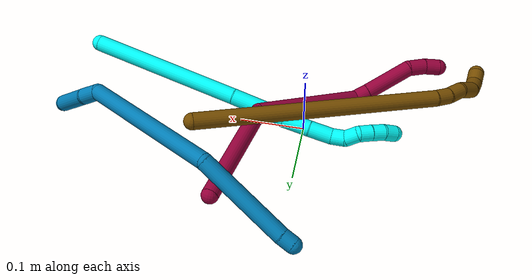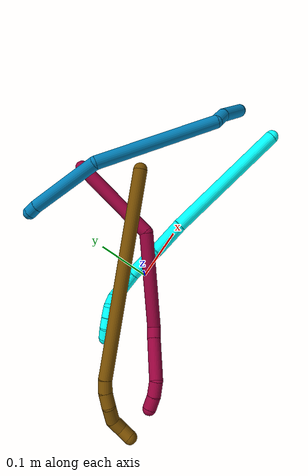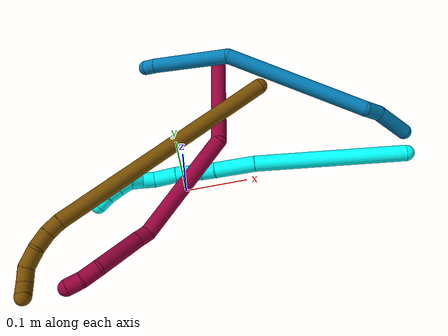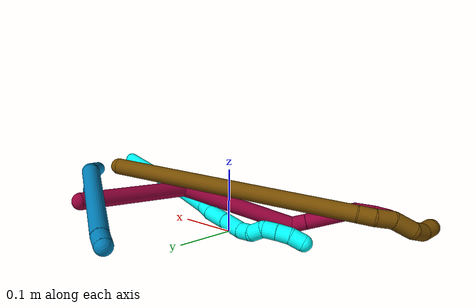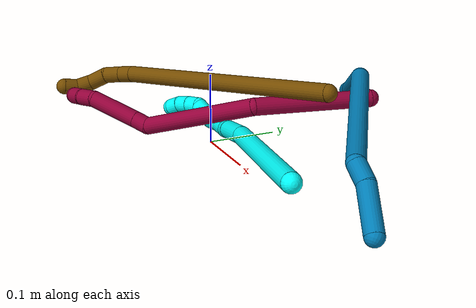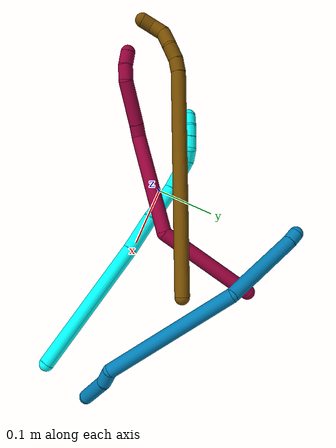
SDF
<sdf version="1.7">
 <world name="default">
  <model name="3">
   <static>0</static>
   <link name="3">
    <collision name="collision-cylinder-e_1_1_4">
     <pose>0 0.010855 -0.11625 -3.04848 1e-06 -2.3e-05</pose>
     <geometry><cylinder><radius>0.0125</radius><length>0.233511</length></cylinder></geometry>
     <surface>
      <friction><ode><mu>1.16</mu><mu2>1.16</mu2><slip1>0</slip1><slip2>0</slip2></ode></friction>
      <contact><ode><kp>1e+06</kp><kd>1</kd><max_vel>0</max_vel><min_depth>0.001</min_depth></ode></contact>
     </surface>
    </collision>
    <visual name="visual-cylinder-e_1_1_4">
     <pose>0 0.010855 -0.11625 -3.04848 1e-06 -2.3e-05</pose>
     <geometry><cylinder><radius>0.0125</radius><length>0.233511</length></cylinder></geometry>
     <material><ambient>0.003922 1 0.996078 1</ambient></material>
    </visual>
    <collision name="collision-cylinder-e_2_4_5">
     <pose>-0.000985 0.021654 -0.264346 3.13983 -0.030936 -3.02752</pose>
     <geometry><cylinder><radius>0.0125</radius><length>0.063725</length></cylinder></geometry>
     <surface>
      <friction><ode><mu>1.16</mu><mu2>1.16</mu2><slip1>0</slip1><slip2>0</slip2></ode></friction>
      <contact><ode><kp>1e+06</kp><kd>1</kd><max_vel>0</max_vel><min_depth>0.001</min_depth></ode></contact>
     </surface>
    </collision>
    <visual name="visual-cylinder-e_2_4_5">
     <pose>-0.000985 0.021654 -0.264346 3.13983 -0.030936 -3.02752</pose>
     <geometry><cylinder><radius>0.0125</radius><length>0.063725</length></cylinder></geometry>
     <material><ambient>0.003922 1 0.996078 1</ambient></material>
    </visual>
    <collision name="collision-cylinder-e_3_5_6">
     <pose>-0.00097 0.020806 -0.307124 3.06933 0.091051 1.8001</pose>
     <geometry><cylinder><radius>0.0125</radius><length>0.02201</length></cylinder></geometry>
     <surface>
      <friction><ode><mu>1.16</mu><mu2>1.16</mu2><slip1>0</slip1><slip2>0</slip2></ode></friction>
      <contact><ode><kp>1e+06</kp><kd>1</kd><max_vel>0</max_vel><min_depth>0.001</min_depth></ode></contact>
     </surface>
    </collision>
    <visual name="visual-cylinder-e_3_5_6">
     <pose>-0.00097 0.020806 -0.307124 3.06933 0.091051 1.8001</pose>
     <geometry><cylinder><radius>0.0125</radius><length>0.02201</length></cylinder></geometry>
     <material><ambient>0.003922 1 0.996078 1</ambient></material>
    </visual>
    <collision name="collision-cylinder-e_4_6_7">
     <pose>-0.000843 0.02189 -0.338803 -3.05145 -0.041914 0.870064</pose>
     <geometry><cylinder><radius>0.0125</radius><length>0.0417</length></cylinder></geometry>
     <surface>
      <friction><ode><mu>1.16</mu><mu2>1.16</mu2><slip1>0</slip1><slip2>0</slip2></ode></friction>
      <contact><ode><kp>1e+06</kp><kd>1</kd><max_vel>0</max_vel><min_depth>0.001</min_depth></ode></contact>
     </surface>
    </collision>
    <visual name="visual-cylinder-e_4_6_7">
     <pose>-0.000843 0.02189 -0.338803 -3.05145 -0.041914 0.870064</pose>
     <geometry><cylinder><radius>0.0125</radius><length>0.0417</length></cylinder></geometry>
     <material><ambient>0.003922 1 0.996078 1</ambient></material>
    </visual>
    <collision name="collision-cylinder-e_5_7_8">
     <pose>-0.003542 0.023376 -0.377396 3.11974 -0.101904 -2.71945</pose>
     <geometry><cylinder><radius>0.0125</radius><length>0.035887</length></cylinder></geometry>
     <surface>
      <friction><ode><mu>1.16</mu><mu2>1.16</mu2><slip1>0</slip1><slip2>0</slip2></ode></friction>
      <contact><ode><kp>1e+06</kp><kd>1</kd><max_vel>0</max_vel><min_depth>0.001</min_depth></ode></contact>
     </surface>
    </collision>
    <visual name="visual-cylinder-e_5_7_8">
     <pose>-0.003542 0.023376 -0.377396 3.11974 -0.101904 -2.71945</pose>
     <geometry><cylinder><radius>0.0125</radius><length>0.035887</length></cylinder></geometry>
     <material><ambient>0.003922 1 0.996078 1</ambient></material>
    </visual>
    <collision name="collision-cylinder-e_6_8_9">
     <pose>-0.007283 0.025445 -0.405566 -2.90771 -0.178588 1.30245</pose>
     <geometry><cylinder><radius>0.0125</radius><length>0.021568</length></cylinder></geometry>
     <surface>
      <friction><ode><mu>1.16</mu><mu2>1.16</mu2><slip1>0</slip1><slip2>0</slip2></ode></friction>
      <contact><ode><kp>1e+06</kp><kd>1</kd><max_vel>0</max_vel><min_depth>0.001</min_depth></ode></contact>
     </surface>
    </collision>
    <visual name="visual-cylinder-e_6_8_9">
     <pose>-0.007283 0.025445 -0.405566 -2.90771 -0.178588 1.30245</pose>
     <geometry><cylinder><radius>0.0125</radius><length>0.021568</length></cylinder></geometry>
     <material><ambient>0.003922 1 0.996078 1</ambient></material>
    </visual>
    <collision name="collision-cylinder-e_7_9_10">
     <pose>-0.014927 0.032769 -0.423585 -2.57796 -0.561545 1.56688</pose>
     <geometry><cylinder><radius>0.0125</radius><length>0.021512</length></cylinder></geometry>
     <surface>
      <friction><ode><mu>1.16</mu><mu2>1.16</mu2><slip1>0</slip1><slip2>0</slip2></ode></friction>
      <contact><ode><kp>1e+06</kp><kd>1</kd><max_vel>0</max_vel><min_depth>0.001</min_depth></ode></contact>
     </surface>
    </collision>
    <visual name="visual-cylinder-e_7_9_10">
     <pose>-0.014927 0.032769 -0.423585 -2.57796 -0.561545 1.56688</pose>
     <geometry><cylinder><radius>0.0125</radius><length>0.021512</length></cylinder></geometry>
     <material><ambient>0.003922 1 0.996078 1</ambient></material>
    </visual>
    <collision name="collision-cylinder-e_8_10_11">
     <pose>-0.026123 0.03657 -0.439587 3.01426 -0.578604 -2.71961</pose>
     <geometry><cylinder><radius>0.0125</radius><length>0.020002</length></cylinder></geometry>
     <surface>
      <friction><ode><mu>1.16</mu><mu2>1.16</mu2><slip1>0</slip1><slip2>0</slip2></ode></friction>
      <contact><ode><kp>1e+06</kp><kd>1</kd><max_vel>0</max_vel><min_depth>0.001</min_depth></ode></contact>
     </surface>
    </collision>
    <visual name="visual-cylinder-e_8_10_11">
     <pose>-0.026123 0.03657 -0.439587 3.01426 -0.578604 -2.71961</pose>
     <geometry><cylinder><radius>0.0125</radius><length>0.020002</length></cylinder></geometry>
     <material><ambient>0.003922 1 0.996078 1</ambient></material>
    </visual>
    <collision name="collision-cylinder-e_9_11_12">
     <pose>-0.036938 0.033678 -0.456161 2.92404 -0.563083 -2.41952</pose>
     <geometry><cylinder><radius>0.0125</radius><length>0.020029</length></cylinder></geometry>
     <surface>
      <friction><ode><mu>1.16</mu><mu2>1.16</mu2><slip1>0</slip1><slip2>0</slip2></ode></friction>
      <contact><ode><kp>1e+06</kp><kd>1</kd><max_vel>0</max_vel><min_depth>0.001</min_depth></ode></contact>
     </surface>
    </collision>
    <visual name="visual-cylinder-e_9_11_12">
     <pose>-0.036938 0.033678 -0.456161 2.92404 -0.563083 -2.41952</pose>
     <geometry><cylinder><radius>0.0125</radius><length>0.020029</length></cylinder></geometry>
     <material><ambient>0.003922 1 0.996078 1</ambient></material>
    </visual>
    <collision name="collision-cylinder-e_10_12_2">
     <pose>-0.04682 0.027713 -0.472359 2.66063 -0.469351 -1.54542</pose>
     <geometry><cylinder><radius>0.0125</radius><length>0.020055</length></cylinder></geometry>
     <surface>
      <friction><ode><mu>1.16</mu><mu2>1.16</mu2><slip1>0</slip1><slip2>0</slip2></ode></friction>
      <contact><ode><kp>1e+06</kp><kd>1</kd><max_vel>0</max_vel><min_depth>0.001</min_depth></ode></contact>
     </surface>
    </collision>
    <visual name="visual-cylinder-e_10_12_2">
     <pose>-0.04682 0.027713 -0.472359 2.66063 -0.469351 -1.54542</pose>
     <geometry><cylinder><radius>0.0125</radius><length>0.020055</length></cylinder></geometry>
     <material><ambient>0.003922 1 0.996078 1</ambient></material>
    </visual>
    <collision name="collision-sphere-2">
     <pose>-0.051355 0.023576 -0.480287 0 -0 0</pose>
     <geometry><sphere><radius>0.0125</radius></sphere></geometry>
     <surface>
      <friction><ode><mu>1.16</mu><mu2>1.16</mu2><slip1>0</slip1><slip2>0</slip2></ode></friction>
      <contact><ode><kp>1e+06</kp><kd>1</kd><max_vel>0</max_vel><min_depth>0.001</min_depth></ode></contact>
     </surface>
    </collision>
    <visual name="visual-sphere-2">
     <pose>-0.051355 0.023576 -0.480287 0 -0 0</pose>
     <geometry><sphere><radius>0.0125</radius></sphere></geometry>
     <material><ambient>0.003922 1 0.996078 1</ambient></material>
    </visual>
    <collision name="collision-sphere-12">
     <pose>-0.042284 0.031851 -0.46443 0 -0 0</pose>
     <geometry><sphere><radius>0.0125</radius></sphere></geometry>
     <surface>
      <friction><ode><mu>1.16</mu><mu2>1.16</mu2><slip1>0</slip1><slip2>0</slip2></ode></friction>
      <contact><ode><kp>1e+06</kp><kd>1</kd><max_vel>0</max_vel><min_depth>0.001</min_depth></ode></contact>
     </surface>
    </collision>
    <visual name="visual-sphere-12">
     <pose>-0.042284 0.031851 -0.46443 0 -0 0</pose>
     <geometry><sphere><radius>0.0125</radius></sphere></geometry>
     <material><ambient>0.003922 1 0.996078 1</ambient></material>
    </visual>
    <collision name="collision-sphere-11">
     <pose>-0.031593 0.035506 -0.447893 0 -0 0</pose>
     <geometry><sphere><radius>0.0125</radius></sphere></geometry>
     <surface>
      <friction><ode><mu>1.16</mu><mu2>1.16</mu2><slip1>0</slip1><slip2>0</slip2></ode></friction>
      <contact><ode><kp>1e+06</kp><kd>1</kd><max_vel>0</max_vel><min_depth>0.001</min_depth></ode></contact>
     </surface>
    </collision>
    <visual name="visual-sphere-11">
     <pose>-0.031593 0.035506 -0.447893 0 -0 0</pose>
     <geometry><sphere><radius>0.0125</radius></sphere></geometry>
     <material><ambient>0.003922 1 0.996078 1</ambient></material>
    </visual>
    <collision name="collision-sphere-10">
     <pose>-0.020654 0.037633 -0.431282 0 -0 0</pose>
     <geometry><sphere><radius>0.0125</radius></sphere></geometry>
     <surface>
      <friction><ode><mu>1.16</mu><mu2>1.16</mu2><slip1>0</slip1><slip2>0</slip2></ode></friction>
      <contact><ode><kp>1e+06</kp><kd>1</kd><max_vel>0</max_vel><min_depth>0.001</min_depth></ode></contact>
     </surface>
    </collision>
    <visual name="visual-sphere-10">
     <pose>-0.020654 0.037633 -0.431282 0 -0 0</pose>
     <geometry><sphere><radius>0.0125</radius></sphere></geometry>
     <material><ambient>0.003922 1 0.996078 1</ambient></material>
    </visual>
    <collision name="collision-sphere-9">
     <pose>-0.009199 0.027905 -0.415889 0 -0 0</pose>
     <geometry><sphere><radius>0.0125</radius></sphere></geometry>
     <surface>
      <friction><ode><mu>1.16</mu><mu2>1.16</mu2><slip1>0</slip1><slip2>0</slip2></ode></friction>
      <contact><ode><kp>1e+06</kp><kd>1</kd><max_vel>0</max_vel><min_depth>0.001</min_depth></ode></contact>
     </surface>
    </collision>
    <visual name="visual-sphere-9">
     <pose>-0.009199 0.027905 -0.415889 0 -0 0</pose>
     <geometry><sphere><radius>0.0125</radius></sphere></geometry>
     <material><ambient>0.003922 1 0.996078 1</ambient></material>
    </visual>
    <collision name="collision-sphere-4">
     <pose>0 0.02171 -0.232499 0 -0 0</pose>
     <geometry><sphere><radius>0.0125</radius></sphere></geometry>
     <surface>
      <friction><ode><mu>1.16</mu><mu2>1.16</mu2><slip1>0</slip1><slip2>0</slip2></ode></friction>
      <contact><ode><kp>1e+06</kp><kd>1</kd><max_vel>0</max_vel><min_depth>0.001</min_depth></ode></contact>
     </surface>
    </collision>
    <visual name="visual-sphere-4">
     <pose>0 0.02171 -0.232499 0 -0 0</pose>
     <geometry><sphere><radius>0.0125</radius></sphere></geometry>
     <material><ambient>0.003922 1 0.996078 1</ambient></material>
    </visual>
    <collision name="collision-sphere-1">
     <geometry><sphere><radius>0.0125</radius></sphere></geometry>
     <surface>
      <friction><ode><mu>1.16</mu><mu2>1.16</mu2><slip1>0</slip1><slip2>0</slip2></ode></friction>
      <contact><ode><kp>1e+06</kp><kd>1</kd><max_vel>0</max_vel><min_depth>0.001</min_depth></ode></contact>
     </surface>
    </collision>
    <visual name="visual-sphere-1">
     <geometry><sphere><radius>0.0125</radius></sphere></geometry>
     <material><ambient>0.003922 1 0.996078 1</ambient></material>
    </visual>
    <collision name="collision-sphere-8">
     <pose>-0.005368 0.022986 -0.395242 0 -0 0</pose>
     <geometry><sphere><radius>0.0125</radius></sphere></geometry>
     <surface>
      <friction><ode><mu>1.16</mu><mu2>1.16</mu2><slip1>0</slip1><slip2>0</slip2></ode></friction>
      <contact><ode><kp>1e+06</kp><kd>1</kd><max_vel>0</max_vel><min_depth>0.001</min_depth></ode></contact>
     </surface>
    </collision>
    <visual name="visual-sphere-8">
     <pose>-0.005368 0.022986 -0.395242 0 -0 0</pose>
     <geometry><sphere><radius>0.0125</radius></sphere></geometry>
     <material><ambient>0.003922 1 0.996078 1</ambient></material>
    </visual>
    <collision name="collision-sphere-5">
     <pose>-0.001971 0.021598 -0.296193 0 -0 0</pose>
     <geometry><sphere><radius>0.0125</radius></sphere></geometry>
     <surface>
      <friction><ode><mu>1.16</mu><mu2>1.16</mu2><slip1>0</slip1><slip2>0</slip2></ode></friction>
      <contact><ode><kp>1e+06</kp><kd>1</kd><max_vel>0</max_vel><min_depth>0.001</min_depth></ode></contact>
     </surface>
    </collision>
    <visual name="visual-sphere-5">
     <pose>-0.001971 0.021598 -0.296193 0 -0 0</pose>
     <geometry><sphere><radius>0.0125</radius></sphere></geometry>
     <material><ambient>0.003922 1 0.996078 1</ambient></material>
    </visual>
    <collision name="collision-sphere-6">
     <pose>3e-05 0.020015 -0.318056 0 -0 0</pose>
     <geometry><sphere><radius>0.0125</radius></sphere></geometry>
     <surface>
      <friction><ode><mu>1.16</mu><mu2>1.16</mu2><slip1>0</slip1><slip2>0</slip2></ode></friction>
      <contact><ode><kp>1e+06</kp><kd>1</kd><max_vel>0</max_vel><min_depth>0.001</min_depth></ode></contact>
     </surface>
    </collision>
    <visual name="visual-sphere-6">
     <pose>3e-05 0.020015 -0.318056 0 -0 0</pose>
     <geometry><sphere><radius>0.0125</radius></sphere></geometry>
     <material><ambient>0.003922 1 0.996078 1</ambient></material>
    </visual>
    <collision name="collision-sphere-7">
     <pose>-0.001717 0.023766 -0.35955 0 -0 0</pose>
     <geometry><sphere><radius>0.0125</radius></sphere></geometry>
     <surface>
      <friction><ode><mu>1.16</mu><mu2>1.16</mu2><slip1>0</slip1><slip2>0</slip2></ode></friction>
      <contact><ode><kp>1e+06</kp><kd>1</kd><max_vel>0</max_vel><min_depth>0.001</min_depth></ode></contact>
     </surface>
    </collision>
    <visual name="visual-sphere-7">
     <pose>-0.001717 0.023766 -0.35955 0 -0 0</pose>
     <geometry><sphere><radius>0.0125</radius></sphere></geometry>
     <material><ambient>0.003922 1 0.996078 1</ambient></material>
    </visual>
    <inertial>
     <pose>-0.005852 0.01868 -0.247369 0 -0 0</pose>
     <mass>0.5</mass>
     <inertia>
      <ixx>0.001044</ixx>
      <ixy>0</ixy>
      <ixz>0</ixz>
      <iyy>-0.001034</iyy>
      <iyz>0</iyz>
      <izz>-0.000133</izz>
     </inertia>
    </inertial>
   </link>
   <pose>0.338331 -0.051588 0.074238 1.35364 0.297037 1.32396</pose>
  </model>
  <model name="8">
   <static>0</static>
   <link name="8">
    <collision name="collision-cylinder-e_1_1_4">
     <pose>-0.027754 -0.067378 0.043032 1.00243 -0.334132 -0.184264</pose>
     <geometry><cylinder><radius>0.0125</radius><length>0.169255</length></cylinder></geometry>
     <surface>
      <friction><ode><mu>1.16</mu><mu2>1.16</mu2><slip1>0</slip1><slip2>0</slip2></ode></friction>
      <contact><ode><kp>1e+06</kp><kd>1</kd><max_vel>0</max_vel><min_depth>0.001</min_depth></ode></contact>
     </surface>
    </collision>
    <visual name="visual-cylinder-e_1_1_4">
     <pose>-0.027754 -0.067378 0.043032 1.00243 -0.334132 -0.184264</pose>
     <geometry><cylinder><radius>0.0125</radius><length>0.169255</length></cylinder></geometry>
     <material><ambient>0.584314 0 0.227451 1</ambient></material>
    </visual>
    <collision name="collision-cylinder-e_2_4_5">
     <pose>-0.133616 -0.178302 0.098051 1.30218 -1.04654 -0.828279</pose>
     <geometry><cylinder><radius>0.0125</radius><length>0.180453</length></cylinder></geometry>
     <surface>
      <friction><ode><mu>1.16</mu><mu2>1.16</mu2><slip1>0</slip1><slip2>0</slip2></ode></friction>
      <contact><ode><kp>1e+06</kp><kd>1</kd><max_vel>0</max_vel><min_depth>0.001</min_depth></ode></contact>
     </surface>
    </collision>
    <visual name="visual-cylinder-e_2_4_5">
     <pose>-0.133616 -0.178302 0.098051 1.30218 -1.04654 -0.828279</pose>
     <geometry><cylinder><radius>0.0125</radius><length>0.180453</length></cylinder></geometry>
     <material><ambient>0.584314 0 0.227451 1</ambient></material>
    </visual>
    <collision name="collision-cylinder-e_3_5_6">
     <pose>-0.220598 -0.223617 0.116888 0.252847 -0.897664 -0.122275</pose>
     <geometry><cylinder><radius>0.0125</radius><length>0.022698</length></cylinder></geometry>
     <surface>
      <friction><ode><mu>1.16</mu><mu2>1.16</mu2><slip1>0</slip1><slip2>0</slip2></ode></friction>
      <contact><ode><kp>1e+06</kp><kd>1</kd><max_vel>0</max_vel><min_depth>0.001</min_depth></ode></contact>
     </surface>
    </collision>
    <visual name="visual-cylinder-e_3_5_6">
     <pose>-0.220598 -0.223617 0.116888 0.252847 -0.897664 -0.122275</pose>
     <geometry><cylinder><radius>0.0125</radius><length>0.022698</length></cylinder></geometry>
     <material><ambient>0.584314 0 0.227451 1</ambient></material>
    </visual>
    <collision name="collision-cylinder-e_4_6_7">
     <pose>-0.258549 -0.232869 0.147501 0.305065 -0.862381 -0.141212</pose>
     <geometry><cylinder><radius>0.0125</radius><length>0.076581</length></cylinder></geometry>
     <surface>
      <friction><ode><mu>1.16</mu><mu2>1.16</mu2><slip1>0</slip1><slip2>0</slip2></ode></friction>
      <contact><ode><kp>1e+06</kp><kd>1</kd><max_vel>0</max_vel><min_depth>0.001</min_depth></ode></contact>
     </surface>
    </collision>
    <visual name="visual-cylinder-e_4_6_7">
     <pose>-0.258549 -0.232869 0.147501 0.305065 -0.862381 -0.141212</pose>
     <geometry><cylinder><radius>0.0125</radius><length>0.076581</length></cylinder></geometry>
     <material><ambient>0.584314 0 0.227451 1</ambient></material>
    </visual>
    <collision name="collision-cylinder-e_5_7_8">
     <pose>-0.300614 -0.243123 0.174856 0.657053 -1.23469 -0.474857</pose>
     <geometry><cylinder><radius>0.0125</radius><length>0.027516</length></cylinder></geometry>
     <surface>
      <friction><ode><mu>1.16</mu><mu2>1.16</mu2><slip1>0</slip1><slip2>0</slip2></ode></friction>
      <contact><ode><kp>1e+06</kp><kd>1</kd><max_vel>0</max_vel><min_depth>0.001</min_depth></ode></contact>
     </surface>
    </collision>
    <visual name="visual-cylinder-e_5_7_8">
     <pose>-0.300614 -0.243123 0.174856 0.657053 -1.23469 -0.474857</pose>
     <geometry><cylinder><radius>0.0125</radius><length>0.027516</length></cylinder></geometry>
     <material><ambient>0.584314 0 0.227451 1</ambient></material>
    </visual>
    <collision name="collision-cylinder-e_6_8_2">
     <pose>-0.325245 -0.246467 0.179915 0.3719 -1.43647 -0.325903</pose>
     <geometry><cylinder><radius>0.0125</radius><length>0.023497</length></cylinder></geometry>
     <surface>
      <friction><ode><mu>1.16</mu><mu2>1.16</mu2><slip1>0</slip1><slip2>0</slip2></ode></friction>
      <contact><ode><kp>1e+06</kp><kd>1</kd><max_vel>0</max_vel><min_depth>0.001</min_depth></ode></contact>
     </surface>
    </collision>
    <visual name="visual-cylinder-e_6_8_2">
     <pose>-0.325245 -0.246467 0.179915 0.3719 -1.43647 -0.325903</pose>
     <geometry><cylinder><radius>0.0125</radius><length>0.023497</length></cylinder></geometry>
     <material><ambient>0.584314 0 0.227451 1</ambient></material>
    </visual>
    <collision name="collision-sphere-2">
     <pose>-0.336888 -0.247038 0.181381 0 -0 0</pose>
     <geometry><sphere><radius>0.0125</radius></sphere></geometry>
     <surface>
      <friction><ode><mu>1.16</mu><mu2>1.16</mu2><slip1>0</slip1><slip2>0</slip2></ode></friction>
      <contact><ode><kp>1e+06</kp><kd>1</kd><max_vel>0</max_vel><min_depth>0.001</min_depth></ode></contact>
     </surface>
    </collision>
    <visual name="visual-sphere-2">
     <pose>-0.336888 -0.247038 0.181381 0 -0 0</pose>
     <geometry><sphere><radius>0.0125</radius></sphere></geometry>
     <material><ambient>0.584314 0 0.227451 1</ambient></material>
    </visual>
    <collision name="collision-sphere-4">
     <pose>-0.055507 -0.134757 0.086064 0 -0 0</pose>
     <geometry><sphere><radius>0.0125</radius></sphere></geometry>
     <surface>
      <friction><ode><mu>1.16</mu><mu2>1.16</mu2><slip1>0</slip1><slip2>0</slip2></ode></friction>
      <contact><ode><kp>1e+06</kp><kd>1</kd><max_vel>0</max_vel><min_depth>0.001</min_depth></ode></contact>
     </surface>
    </collision>
    <visual name="visual-sphere-4">
     <pose>-0.055507 -0.134757 0.086064 0 -0 0</pose>
     <geometry><sphere><radius>0.0125</radius></sphere></geometry>
     <material><ambient>0.584314 0 0.227451 1</ambient></material>
    </visual>
    <collision name="collision-sphere-1">
     <geometry><sphere><radius>0.0125</radius></sphere></geometry>
     <surface>
      <friction><ode><mu>1.16</mu><mu2>1.16</mu2><slip1>0</slip1><slip2>0</slip2></ode></friction>
      <contact><ode><kp>1e+06</kp><kd>1</kd><max_vel>0</max_vel><min_depth>0.001</min_depth></ode></contact>
     </surface>
    </collision>
    <visual name="visual-sphere-1">
     <geometry><sphere><radius>0.0125</radius></sphere></geometry>
     <material><ambient>0.584314 0 0.227451 1</ambient></material>
    </visual>
    <collision name="collision-sphere-8">
     <pose>-0.313603 -0.245895 0.178449 0 -0 0</pose>
     <geometry><sphere><radius>0.0125</radius></sphere></geometry>
     <surface>
      <friction><ode><mu>1.16</mu><mu2>1.16</mu2><slip1>0</slip1><slip2>0</slip2></ode></friction>
      <contact><ode><kp>1e+06</kp><kd>1</kd><max_vel>0</max_vel><min_depth>0.001</min_depth></ode></contact>
     </surface>
    </collision>
    <visual name="visual-sphere-8">
     <pose>-0.313603 -0.245895 0.178449 0 -0 0</pose>
     <geometry><sphere><radius>0.0125</radius></sphere></geometry>
     <material><ambient>0.584314 0 0.227451 1</ambient></material>
    </visual>
    <collision name="collision-sphere-5">
     <pose>-0.211725 -0.221847 0.110037 0 -0 0</pose>
     <geometry><sphere><radius>0.0125</radius></sphere></geometry>
     <surface>
      <friction><ode><mu>1.16</mu><mu2>1.16</mu2><slip1>0</slip1><slip2>0</slip2></ode></friction>
      <contact><ode><kp>1e+06</kp><kd>1</kd><max_vel>0</max_vel><min_depth>0.001</min_depth></ode></contact>
     </surface>
    </collision>
    <visual name="visual-sphere-5">
     <pose>-0.211725 -0.221847 0.110037 0 -0 0</pose>
     <geometry><sphere><radius>0.0125</radius></sphere></geometry>
     <material><ambient>0.584314 0 0.227451 1</ambient></material>
    </visual>
    <collision name="collision-sphere-6">
     <pose>-0.229471 -0.225386 0.123738 0 -0 0</pose>
     <geometry><sphere><radius>0.0125</radius></sphere></geometry>
     <surface>
      <friction><ode><mu>1.16</mu><mu2>1.16</mu2><slip1>0</slip1><slip2>0</slip2></ode></friction>
      <contact><ode><kp>1e+06</kp><kd>1</kd><max_vel>0</max_vel><min_depth>0.001</min_depth></ode></contact>
     </surface>
    </collision>
    <visual name="visual-sphere-6">
     <pose>-0.229471 -0.225386 0.123738 0 -0 0</pose>
     <geometry><sphere><radius>0.0125</radius></sphere></geometry>
     <material><ambient>0.584314 0 0.227451 1</ambient></material>
    </visual>
    <collision name="collision-sphere-7">
     <pose>-0.287626 -0.240352 0.171263 0 -0 0</pose>
     <geometry><sphere><radius>0.0125</radius></sphere></geometry>
     <surface>
      <friction><ode><mu>1.16</mu><mu2>1.16</mu2><slip1>0</slip1><slip2>0</slip2></ode></friction>
      <contact><ode><kp>1e+06</kp><kd>1</kd><max_vel>0</max_vel><min_depth>0.001</min_depth></ode></contact>
     </surface>
    </collision>
    <visual name="visual-sphere-7">
     <pose>-0.287626 -0.240352 0.171263 0 -0 0</pose>
     <geometry><sphere><radius>0.0125</radius></sphere></geometry>
     <material><ambient>0.584314 0 0.227451 1</ambient></material>
    </visual>
    <inertial>
     <pose>-0.13906 -0.157938 0.095929 0 -0 0</pose>
     <mass>0.5</mass>
     <inertia>
      <ixx>0.000293</ixx>
      <ixy>0</ixy>
      <ixz>0</ixz>
      <iyy>0.000401</iyy>
      <iyz>0</iyz>
      <izz>0.001191</izz>
     </inertia>
    </inertial>
   </link>
   <pose>0.095519 0.204732 0.06664 0.489527 -0.227684 0.146604</pose>
  </model>
  <model name="9">
   <static>0</static>
   <link name="9">
    <collision name="collision-cylinder-e_1_1_4">
     <pose>-0.014734 0.006146 0.02837 -0.213331 -0.469699 0.051226</pose>
     <geometry><cylinder><radius>0.0125</radius><length>0.065107</length></cylinder></geometry>
     <surface>
      <friction><ode><mu>1.16</mu><mu2>1.16</mu2><slip1>0</slip1><slip2>0</slip2></ode></friction>
      <contact><ode><kp>1e+06</kp><kd>1</kd><max_vel>0</max_vel><min_depth>0.001</min_depth></ode></contact>
     </surface>
    </collision>
    <visual name="visual-cylinder-e_1_1_4">
     <pose>-0.014734 0.006146 0.02837 -0.213331 -0.469699 0.051226</pose>
     <geometry><cylinder><radius>0.0125</radius><length>0.065107</length></cylinder></geometry>
     <material><ambient>0 0.490196 0.709804 1</ambient></material>
    </visual>
    <collision name="collision-cylinder-e_2_4_5">
     <pose>-0.039391 0.01589 0.067347 -0.327098 -0.724935 0.124998</pose>
     <geometry><cylinder><radius>0.0125</radius><length>0.029927</length></cylinder></geometry>
     <surface>
      <friction><ode><mu>1.16</mu><mu2>1.16</mu2><slip1>0</slip1><slip2>0</slip2></ode></friction>
      <contact><ode><kp>1e+06</kp><kd>1</kd><max_vel>0</max_vel><min_depth>0.001</min_depth></ode></contact>
     </surface>
    </collision>
    <visual name="visual-cylinder-e_2_4_5">
     <pose>-0.039391 0.01589 0.067347 -0.327098 -0.724935 0.124998</pose>
     <geometry><cylinder><radius>0.0125</radius><length>0.029927</length></cylinder></geometry>
     <material><ambient>0 0.490196 0.709804 1</ambient></material>
    </visual>
    <collision name="collision-cylinder-e_3_5_6">
     <pose>-0.07596 0.102171 0.161676 -0.779151 -0.222708 0.09175</pose>
     <geometry><cylinder><radius>0.0125</radius><length>0.241295</length></cylinder></geometry>
     <surface>
      <friction><ode><mu>1.16</mu><mu2>1.16</mu2><slip1>0</slip1><slip2>0</slip2></ode></friction>
      <contact><ode><kp>1e+06</kp><kd>1</kd><max_vel>0</max_vel><min_depth>0.001</min_depth></ode></contact>
     </surface>
    </collision>
    <visual name="visual-cylinder-e_3_5_6">
     <pose>-0.07596 0.102171 0.161676 -0.779151 -0.222708 0.09175</pose>
     <geometry><cylinder><radius>0.0125</radius><length>0.241295</length></cylinder></geometry>
     <material><ambient>0 0.490196 0.709804 1</ambient></material>
    </visual>
    <collision name="collision-cylinder-e_4_6_7">
     <pose>-0.11531 0.253911 0.260369 -1.35731 -0.177856 0.143563</pose>
     <geometry><cylinder><radius>0.0125</radius><length>0.143588</length></cylinder></geometry>
     <surface>
      <friction><ode><mu>1.16</mu><mu2>1.16</mu2><slip1>0</slip1><slip2>0</slip2></ode></friction>
      <contact><ode><kp>1e+06</kp><kd>1</kd><max_vel>0</max_vel><min_depth>0.001</min_depth></ode></contact>
     </surface>
    </collision>
    <visual name="visual-cylinder-e_4_6_7">
     <pose>-0.11531 0.253911 0.260369 -1.35731 -0.177856 0.143563</pose>
     <geometry><cylinder><radius>0.0125</radius><length>0.143588</length></cylinder></geometry>
     <material><ambient>0 0.490196 0.709804 1</ambient></material>
    </visual>
    <collision name="collision-cylinder-e_5_7_2">
     <pose>-0.130893 0.332431 0.277068 -1.39012 -0.291057 0.243227</pose>
     <geometry><cylinder><radius>0.0125</radius><length>0.020083</length></cylinder></geometry>
     <surface>
      <friction><ode><mu>1.16</mu><mu2>1.16</mu2><slip1>0</slip1><slip2>0</slip2></ode></friction>
      <contact><ode><kp>1e+06</kp><kd>1</kd><max_vel>0</max_vel><min_depth>0.001</min_depth></ode></contact>
     </surface>
    </collision>
    <visual name="visual-cylinder-e_5_7_2">
     <pose>-0.130893 0.332431 0.277068 -1.39012 -0.291057 0.243227</pose>
     <geometry><cylinder><radius>0.0125</radius><length>0.020083</length></cylinder></geometry>
     <material><ambient>0 0.490196 0.709804 1</ambient></material>
    </visual>
    <collision name="collision-sphere-2">
     <pose>-0.133775 0.341893 0.278797 0 -0 0</pose>
     <geometry><sphere><radius>0.0125</radius></sphere></geometry>
     <surface>
      <friction><ode><mu>1.16</mu><mu2>1.16</mu2><slip1>0</slip1><slip2>0</slip2></ode></friction>
      <contact><ode><kp>1e+06</kp><kd>1</kd><max_vel>0</max_vel><min_depth>0.001</min_depth></ode></contact>
     </surface>
    </collision>
    <visual name="visual-sphere-2">
     <pose>-0.133775 0.341893 0.278797 0 -0 0</pose>
     <geometry><sphere><radius>0.0125</radius></sphere></geometry>
     <material><ambient>0 0.490196 0.709804 1</ambient></material>
    </visual>
    <collision name="collision-sphere-7">
     <pose>-0.128012 0.322969 0.27534 0 -0 0</pose>
     <geometry><sphere><radius>0.0125</radius></sphere></geometry>
     <surface>
      <friction><ode><mu>1.16</mu><mu2>1.16</mu2><slip1>0</slip1><slip2>0</slip2></ode></friction>
      <contact><ode><kp>1e+06</kp><kd>1</kd><max_vel>0</max_vel><min_depth>0.001</min_depth></ode></contact>
     </surface>
    </collision>
    <visual name="visual-sphere-7">
     <pose>-0.128012 0.322969 0.27534 0 -0 0</pose>
     <geometry><sphere><radius>0.0125</radius></sphere></geometry>
     <material><ambient>0 0.490196 0.709804 1</ambient></material>
    </visual>
    <collision name="collision-sphere-6">
     <pose>-0.102608 0.184854 0.245398 0 -0 0</pose>
     <geometry><sphere><radius>0.0125</radius></sphere></geometry>
     <surface>
      <friction><ode><mu>1.16</mu><mu2>1.16</mu2><slip1>0</slip1><slip2>0</slip2></ode></friction>
      <contact><ode><kp>1e+06</kp><kd>1</kd><max_vel>0</max_vel><min_depth>0.001</min_depth></ode></contact>
     </surface>
    </collision>
    <visual name="visual-sphere-6">
     <pose>-0.102608 0.184854 0.245398 0 -0 0</pose>
     <geometry><sphere><radius>0.0125</radius></sphere></geometry>
     <material><ambient>0 0.490196 0.709804 1</ambient></material>
    </visual>
    <collision name="collision-sphere-5">
     <pose>-0.049313 0.019489 0.077954 0 -0 0</pose>
     <geometry><sphere><radius>0.0125</radius></sphere></geometry>
     <surface>
      <friction><ode><mu>1.16</mu><mu2>1.16</mu2><slip1>0</slip1><slip2>0</slip2></ode></friction>
      <contact><ode><kp>1e+06</kp><kd>1</kd><max_vel>0</max_vel><min_depth>0.001</min_depth></ode></contact>
     </surface>
    </collision>
    <visual name="visual-sphere-5">
     <pose>-0.049313 0.019489 0.077954 0 -0 0</pose>
     <geometry><sphere><radius>0.0125</radius></sphere></geometry>
     <material><ambient>0 0.490196 0.709804 1</ambient></material>
    </visual>
    <collision name="collision-sphere-1">
     <geometry><sphere><radius>0.0125</radius></sphere></geometry>
     <surface>
      <friction><ode><mu>1.16</mu><mu2>1.16</mu2><slip1>0</slip1><slip2>0</slip2></ode></friction>
      <contact><ode><kp>1e+06</kp><kd>1</kd><max_vel>0</max_vel><min_depth>0.001</min_depth></ode></contact>
     </surface>
    </collision>
    <visual name="visual-sphere-1">
     <geometry><sphere><radius>0.0125</radius></sphere></geometry>
     <material><ambient>0 0.490196 0.709804 1</ambient></material>
    </visual>
    <collision name="collision-sphere-4">
     <pose>-0.029469 0.012291 0.05674 0 -0 0</pose>
     <geometry><sphere><radius>0.0125</radius></sphere></geometry>
     <surface>
      <friction><ode><mu>1.16</mu><mu2>1.16</mu2><slip1>0</slip1><slip2>0</slip2></ode></friction>
      <contact><ode><kp>1e+06</kp><kd>1</kd><max_vel>0</max_vel><min_depth>0.001</min_depth></ode></contact>
     </surface>
    </collision>
    <visual name="visual-sphere-4">
     <pose>-0.029469 0.012291 0.05674 0 -0 0</pose>
     <geometry><sphere><radius>0.0125</radius></sphere></geometry>
     <material><ambient>0 0.490196 0.709804 1</ambient></material>
    </visual>
    <inertial>
     <pose>-0.079306 0.137328 0.171649 0 -0 0</pose>
     <mass>0.5</mass>
     <inertia>
      <ixx>0.001551</ixx>
      <ixy>0</ixy>
      <ixz>0</ixz>
      <iyy>0.00111</iyy>
      <iyz>0</iyz>
      <izz>-0.000717</izz>
     </inertia>
    </inertial>
   </link>
   <pose>0.380517 0.03074 0.011984 -0.69172 0.230156 0.800176</pose>
  </model>
  <model name="12">
   <static>0</static>
   <link name="12">
    <collision name="collision-cylinder-e_1_1_4">
     <pose>-0.064347 0.010714 0.175646 -0.060924 -0.350563 0.010793</pose>
     <geometry><cylinder><radius>0.0125</radius><length>0.374736</length></cylinder></geometry>
     <surface>
      <friction><ode><mu>1.16</mu><mu2>1.16</mu2><slip1>0</slip1><slip2>0</slip2></ode></friction>
      <contact><ode><kp>1e+06</kp><kd>1</kd><max_vel>0</max_vel><min_depth>0.001</min_depth></ode></contact>
     </surface>
    </collision>
    <visual name="visual-cylinder-e_1_1_4">
     <pose>-0.064347 0.010714 0.175646 -0.060924 -0.350563 0.010793</pose>
     <geometry><cylinder><radius>0.0125</radius><length>0.374736</length></cylinder></geometry>
     <material><ambient>0.466667 0.301961 0 1</ambient></material>
    </visual>
    <collision name="collision-cylinder-e_2_4_5">
     <pose>-0.133525 0.023817 0.361695 -0.225635 -0.424952 0.048875</pose>
     <geometry><cylinder><radius>0.0125</radius><length>0.023434</length></cylinder></geometry>
     <surface>
      <friction><ode><mu>1.16</mu><mu2>1.16</mu2><slip1>0</slip1><slip2>0</slip2></ode></friction>
      <contact><ode><kp>1e+06</kp><kd>1</kd><max_vel>0</max_vel><min_depth>0.001</min_depth></ode></contact>
     </surface>
    </collision>
    <visual name="visual-cylinder-e_2_4_5">
     <pose>-0.133525 0.023817 0.361695 -0.225635 -0.424952 0.048875</pose>
     <geometry><cylinder><radius>0.0125</radius><length>0.023434</length></cylinder></geometry>
     <material><ambient>0.466667 0.301961 0 1</ambient></material>
    </visual>
    <collision name="collision-cylinder-e_3_5_6">
     <pose>-0.1455 0.030794 0.382088 -0.430712 -0.576338 0.129502</pose>
     <geometry><cylinder><radius>0.0125</radius><length>0.02622</length></cylinder></geometry>
     <surface>
      <friction><ode><mu>1.16</mu><mu2>1.16</mu2><slip1>0</slip1><slip2>0</slip2></ode></friction>
      <contact><ode><kp>1e+06</kp><kd>1</kd><max_vel>0</max_vel><min_depth>0.001</min_depth></ode></contact>
     </surface>
    </collision>
    <visual name="visual-cylinder-e_3_5_6">
     <pose>-0.1455 0.030794 0.382088 -0.430712 -0.576338 0.129502</pose>
     <geometry><cylinder><radius>0.0125</radius><length>0.02622</length></cylinder></geometry>
     <material><ambient>0.466667 0.301961 0 1</ambient></material>
    </visual>
    <collision name="collision-cylinder-e_4_6_7">
     <pose>-0.156641 0.043894 0.404501 -0.60057 -0.259447 0.080747</pose>
     <geometry><cylinder><radius>0.0125</radius><length>0.031163</length></cylinder></geometry>
     <surface>
      <friction><ode><mu>1.16</mu><mu2>1.16</mu2><slip1>0</slip1><slip2>0</slip2></ode></friction>
      <contact><ode><kp>1e+06</kp><kd>1</kd><max_vel>0</max_vel><min_depth>0.001</min_depth></ode></contact>
     </surface>
    </collision>
    <visual name="visual-cylinder-e_4_6_7">
     <pose>-0.156641 0.043894 0.404501 -0.60057 -0.259447 0.080747</pose>
     <geometry><cylinder><radius>0.0125</radius><length>0.031163</length></cylinder></geometry>
     <material><ambient>0.466667 0.301961 0 1</ambient></material>
    </visual>
    <collision name="collision-cylinder-e_5_7_8">
     <pose>-0.167442 0.060843 0.421441 -1.07938 -0.617997 0.377875</pose>
     <geometry><cylinder><radius>0.0125</radius><length>0.023484</length></cylinder></geometry>
     <surface>
      <friction><ode><mu>1.16</mu><mu2>1.16</mu2><slip1>0</slip1><slip2>0</slip2></ode></friction>
      <contact><ode><kp>1e+06</kp><kd>1</kd><max_vel>0</max_vel><min_depth>0.001</min_depth></ode></contact>
     </surface>
    </collision>
    <visual name="visual-cylinder-e_5_7_8">
     <pose>-0.167442 0.060843 0.421441 -1.07938 -0.617997 0.377875</pose>
     <geometry><cylinder><radius>0.0125</radius><length>0.023484</length></cylinder></geometry>
     <material><ambient>0.466667 0.301961 0 1</ambient></material>
    </visual>
    <collision name="collision-cylinder-e_6_8_2">
     <pose>-0.183227 0.074326 0.427889 -1.20513 -1.02923 0.741915</pose>
     <geometry><cylinder><radius>0.0125</radius><length>0.020964</length></cylinder></geometry>
     <surface>
      <friction><ode><mu>1.16</mu><mu2>1.16</mu2><slip1>0</slip1><slip2>0</slip2></ode></friction>
      <contact><ode><kp>1e+06</kp><kd>1</kd><max_vel>0</max_vel><min_depth>0.001</min_depth></ode></contact>
     </surface>
    </collision>
    <visual name="visual-cylinder-e_6_8_2">
     <pose>-0.183227 0.074326 0.427889 -1.20513 -1.02923 0.741915</pose>
     <geometry><cylinder><radius>0.0125</radius><length>0.020964</length></cylinder></geometry>
     <material><ambient>0.466667 0.301961 0 1</ambient></material>
    </visual>
    <collision name="collision-sphere-2">
     <pose>-0.192209 0.079372 0.429821 0 -0 0</pose>
     <geometry><sphere><radius>0.0125</radius></sphere></geometry>
     <surface>
      <friction><ode><mu>1.16</mu><mu2>1.16</mu2><slip1>0</slip1><slip2>0</slip2></ode></friction>
      <contact><ode><kp>1e+06</kp><kd>1</kd><max_vel>0</max_vel><min_depth>0.001</min_depth></ode></contact>
     </surface>
    </collision>
    <visual name="visual-sphere-2">
     <pose>-0.192209 0.079372 0.429821 0 -0 0</pose>
     <geometry><sphere><radius>0.0125</radius></sphere></geometry>
     <material><ambient>0.466667 0.301961 0 1</ambient></material>
    </visual>
    <collision name="collision-sphere-4">
     <pose>-0.128694 0.021428 0.351291 0 -0 0</pose>
     <geometry><sphere><radius>0.0125</radius></sphere></geometry>
     <surface>
      <friction><ode><mu>1.16</mu><mu2>1.16</mu2><slip1>0</slip1><slip2>0</slip2></ode></friction>
      <contact><ode><kp>1e+06</kp><kd>1</kd><max_vel>0</max_vel><min_depth>0.001</min_depth></ode></contact>
     </surface>
    </collision>
    <visual name="visual-sphere-4">
     <pose>-0.128694 0.021428 0.351291 0 -0 0</pose>
     <geometry><sphere><radius>0.0125</radius></sphere></geometry>
     <material><ambient>0.466667 0.301961 0 1</ambient></material>
    </visual>
    <collision name="collision-sphere-1">
     <geometry><sphere><radius>0.0125</radius></sphere></geometry>
     <surface>
      <friction><ode><mu>1.16</mu><mu2>1.16</mu2><slip1>0</slip1><slip2>0</slip2></ode></friction>
      <contact><ode><kp>1e+06</kp><kd>1</kd><max_vel>0</max_vel><min_depth>0.001</min_depth></ode></contact>
     </surface>
    </collision>
    <visual name="visual-sphere-1">
     <geometry><sphere><radius>0.0125</radius></sphere></geometry>
     <material><ambient>0.466667 0.301961 0 1</ambient></material>
    </visual>
    <collision name="collision-sphere-8">
     <pose>-0.174246 0.06928 0.425957 0 -0 0</pose>
     <geometry><sphere><radius>0.0125</radius></sphere></geometry>
     <surface>
      <friction><ode><mu>1.16</mu><mu2>1.16</mu2><slip1>0</slip1><slip2>0</slip2></ode></friction>
      <contact><ode><kp>1e+06</kp><kd>1</kd><max_vel>0</max_vel><min_depth>0.001</min_depth></ode></contact>
     </surface>
    </collision>
    <visual name="visual-sphere-8">
     <pose>-0.174246 0.06928 0.425957 0 -0 0</pose>
     <geometry><sphere><radius>0.0125</radius></sphere></geometry>
     <material><ambient>0.466667 0.301961 0 1</ambient></material>
    </visual>
    <collision name="collision-sphere-5">
     <pose>-0.138355 0.026205 0.3721 0 -0 0</pose>
     <geometry><sphere><radius>0.0125</radius></sphere></geometry>
     <surface>
      <friction><ode><mu>1.16</mu><mu2>1.16</mu2><slip1>0</slip1><slip2>0</slip2></ode></friction>
      <contact><ode><kp>1e+06</kp><kd>1</kd><max_vel>0</max_vel><min_depth>0.001</min_depth></ode></contact>
     </surface>
    </collision>
    <visual name="visual-sphere-5">
     <pose>-0.138355 0.026205 0.3721 0 -0 0</pose>
     <geometry><sphere><radius>0.0125</radius></sphere></geometry>
     <material><ambient>0.466667 0.301961 0 1</ambient></material>
    </visual>
    <collision name="collision-sphere-6">
     <pose>-0.152644 0.035384 0.392076 0 -0 0</pose>
     <geometry><sphere><radius>0.0125</radius></sphere></geometry>
     <surface>
      <friction><ode><mu>1.16</mu><mu2>1.16</mu2><slip1>0</slip1><slip2>0</slip2></ode></friction>
      <contact><ode><kp>1e+06</kp><kd>1</kd><max_vel>0</max_vel><min_depth>0.001</min_depth></ode></contact>
     </surface>
    </collision>
    <visual name="visual-sphere-6">
     <pose>-0.152644 0.035384 0.392076 0 -0 0</pose>
     <geometry><sphere><radius>0.0125</radius></sphere></geometry>
     <material><ambient>0.466667 0.301961 0 1</ambient></material>
    </visual>
    <collision name="collision-sphere-7">
     <pose>-0.160639 0.052405 0.416925 0 -0 0</pose>
     <geometry><sphere><radius>0.0125</radius></sphere></geometry>
     <surface>
      <friction><ode><mu>1.16</mu><mu2>1.16</mu2><slip1>0</slip1><slip2>0</slip2></ode></friction>
      <contact><ode><kp>1e+06</kp><kd>1</kd><max_vel>0</max_vel><min_depth>0.001</min_depth></ode></contact>
     </surface>
    </collision>
    <visual name="visual-sphere-7">
     <pose>-0.160639 0.052405 0.416925 0 -0 0</pose>
     <geometry><sphere><radius>0.0125</radius></sphere></geometry>
     <material><ambient>0.466667 0.301961 0 1</ambient></material>
    </visual>
    <inertial>
     <pose>-0.087424 0.019471 0.231575 0 -0 0</pose>
     <mass>0.5</mass>
     <inertia>
      <ixx>0.004173</ixx>
      <ixy>0</ixy>
      <ixz>0</ixz>
      <iyy>0.004455</iyy>
      <iyz>0</iyz>
      <izz>0.001293</izz>
     </inertia>
    </inertial>
   </link>
   <pose>0.143995 0.107061 0.100319 -1.98467 0.683218 1.43386</pose>
  </model>
 </world>
</sdf>
